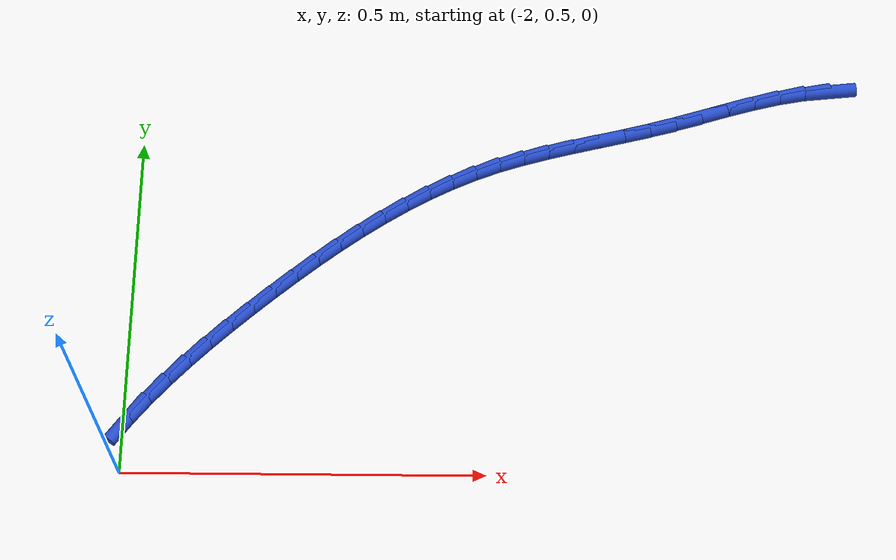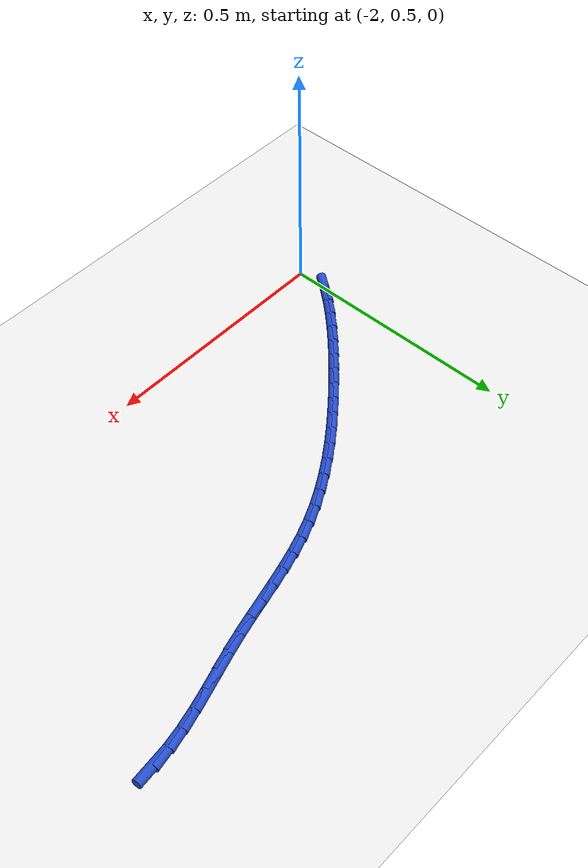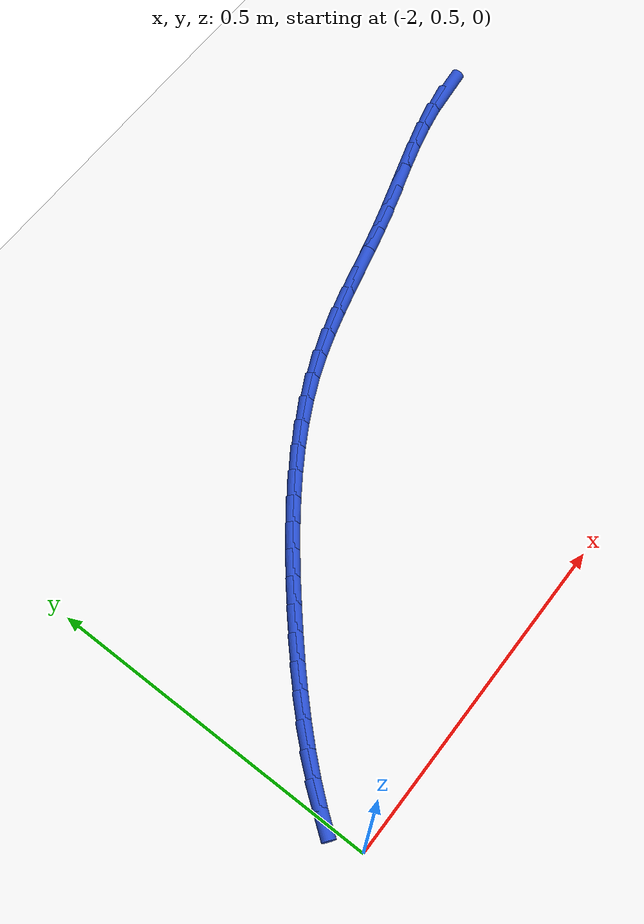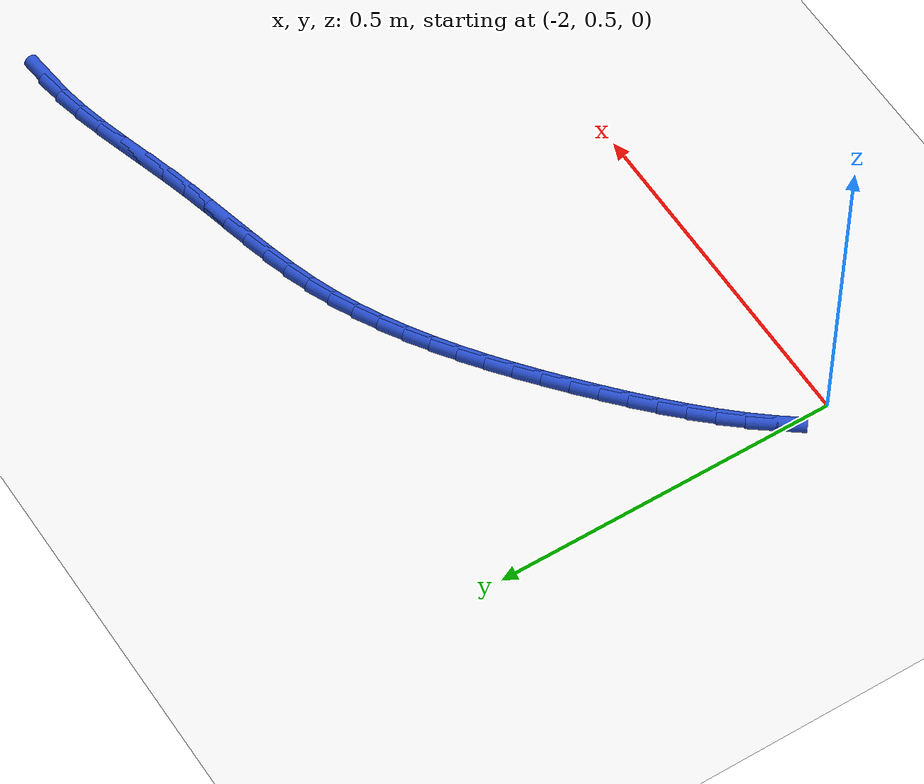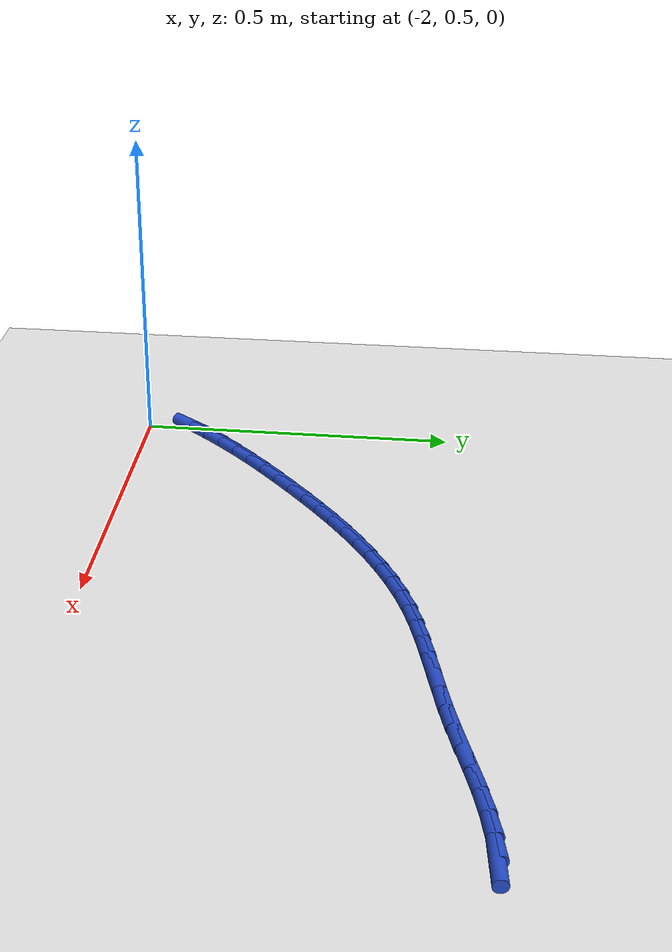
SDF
<sdf version="1.6">
 <world name="default">
  <model name="ground_plane">
   <static>1</static>
   <link name="link">
    <collision name="collision">
     <geometry><plane><normal>0 0 1</normal><size>100 100</size></plane></geometry>
     <surface><friction><ode><mu>100</mu><mu2>50</mu2></ode></friction></surface>
    </collision>
    <visual name="visual">
     <cast_shadows>0</cast_shadows>
     <geometry><plane><normal>0 0 1</normal><size>100 100</size></plane></geometry>
     <material>
      <script><uri>file://media/materials/scripts/gazebo.material</uri><name>Gazebo/WhiteGlow</name></script>
     </material>
    </visual>
   </link>
  </model>
  <model name="line">
   <link name="link_43">
    <pose>-1.0068866587633527 1.0908039915224352 0.01 0 1.57 0.10284120702126016</pose>
    <collision name="collision">
     <geometry><cylinder><radius>0.01</radius><length>0.08</length></cylinder></geometry>
    </collision>
    <visual name="visual">
     <material>
      <script><name>Gazebo/Blue</name><uri>file://media/materials/scripts/gazebo.material</uri></script>
     </material>
     <geometry><cylinder><radius>0.01</radius><length>0.08</length></cylinder></geometry>
    </visual>
   </link>
   <link name="link_44">
    <pose>-1.0431667422989725 1.0870596943366468 0.01 0 1.57 0.1869332416069128</pose>
    <collision name="collision">
     <geometry><cylinder><radius>0.01</radius><length>0.08</length></cylinder></geometry>
    </collision>
    <visual name="visual">
     <material>
      <script><name>Gazebo/Blue</name><uri>file://media/materials/scripts/gazebo.material</uri></script>
     </material>
     <geometry><cylinder><radius>0.01</radius><length>0.08</length></cylinder></geometry>
    </visual>
   </link>
   <link name="link_45">
    <pose>-1.0802336745102745 1.0800487986654752 0.01 0 1.57 0.24567239808402153</pose>
    <collision name="collision">
     <geometry><cylinder><radius>0.01</radius><length>0.08</length></cylinder></geometry>
    </collision>
    <visual name="visual">
     <material>
      <script><name>Gazebo/Blue</name><uri>file://media/materials/scripts/gazebo.material</uri></script>
     </material>
     <geometry><cylinder><radius>0.01</radius><length>0.08</length></cylinder></geometry>
    </visual>
   </link>
   <link name="link_46">
    <pose>-1.1178769156962396 1.0706102369671717 0.01 0 1.57 0.2823710493330009</pose>
    <collision name="collision">
     <geometry><cylinder><radius>0.01</radius><length>0.08</length></cylinder></geometry>
    </collision>
    <visual name="visual">
     <material>
      <script><name>Gazebo/Blue</name><uri>file://media/materials/scripts/gazebo.material</uri></script>
     </material>
     <geometry><cylinder><radius>0.01</radius><length>0.08</length></cylinder></geometry>
    </visual>
   </link>
   <link name="link_47">
    <pose>-1.1558859261558487 1.0595829416999898 0.01 0 1.57 0.29931862418804644</pose>
    <collision name="collision">
     <geometry><cylinder><radius>0.01</radius><length>0.08</length></cylinder></geometry>
    </collision>
    <visual name="visual">
     <material>
      <script><name>Gazebo/Blue</name><uri>file://media/materials/scripts/gazebo.material</uri></script>
     </material>
     <geometry><cylinder><radius>0.01</radius><length>0.08</length></cylinder></geometry>
    </visual>
   </link>
   <link name="link_48">
    <pose>-1.1940501661880838 1.0478058453221826 0.01 0 1.57 0.2975911426088817</pose>
    <collision name="collision">
     <geometry><cylinder><radius>0.01</radius><length>0.08</length></cylinder></geometry>
    </collision>
    <visual name="visual">
     <material>
      <script><name>Gazebo/Blue</name><uri>file://media/materials/scripts/gazebo.material</uri></script>
     </material>
     <geometry><cylinder><radius>0.01</radius><length>0.08</length></cylinder></geometry>
    </visual>
   </link>
   <link name="link_49">
    <pose>-1.232159096091926 1.0361178802920024 0.01 0 1.57 0.2776125273438024</pose>
    <collision name="collision">
     <geometry><cylinder><radius>0.01</radius><length>0.08</length></cylinder></geometry>
    </collision>
    <visual name="visual">
     <material>
      <script><name>Gazebo/Blue</name><uri>file://media/materials/scripts/gazebo.material</uri></script>
     </material>
     <geometry><cylinder><radius>0.01</radius><length>0.08</length></cylinder></geometry>
    </visual>
   </link>
   <link name="link_50">
    <pose>-1.2700052946151772 1.025332803401851 0.01 0 1.57 0.25323413614008616</pose>
    <collision name="collision">
     <geometry><cylinder><radius>0.01</radius><length>0.08</length></cylinder></geometry>
    </collision>
    <visual name="visual">
     <material>
      <script><name>Gazebo/Blue</name><uri>file://media/materials/scripts/gazebo.material</uri></script>
     </material>
     <geometry><cylinder><radius>0.01</radius><length>0.08</length></cylinder></geometry>
    </visual>
   </link>
   <link name="link_51">
    <pose>-1.3074586478881973 1.0156402583214854 0.01 0 1.57 0.2400868211530857</pose>
    <collision name="collision">
     <geometry><cylinder><radius>0.01</radius><length>0.08</length></cylinder></geometry>
    </collision>
    <visual name="visual">
     <material>
      <script><name>Gazebo/Blue</name><uri>file://media/materials/scripts/gazebo.material</uri></script>
     </material>
     <geometry><cylinder><radius>0.01</radius><length>0.08</length></cylinder></geometry>
    </visual>
   </link>
   <link name="link_52">
    <pose>-1.344469584534965 1.0065796581018849 0.01 0 1.57 0.23953303718060182</pose>
    <collision name="collision">
     <geometry><cylinder><radius>0.01</radius><length>0.08</length></cylinder></geometry>
    </collision>
    <visual name="visual">
     <material>
      <script><name>Gazebo/Blue</name><uri>file://media/materials/scripts/gazebo.material</uri></script>
     </material>
     <geometry><cylinder><radius>0.01</radius><length>0.08</length></cylinder></geometry>
    </visual>
   </link>
   <link name="link_53">
    <pose>-1.3809922989913888 0.9976600138768246 0.01 0 1.57 0.25209243304709616</pose>
    <collision name="collision">
     <geometry><cylinder><radius>0.01</radius><length>0.08</length></cylinder></geometry>
    </collision>
    <visual name="visual">
     <material>
      <script><name>Gazebo/Blue</name><uri>file://media/materials/scripts/gazebo.material</uri></script>
     </material>
     <geometry><cylinder><radius>0.01</radius><length>0.08</length></cylinder></geometry>
    </visual>
   </link>
   <link name="link_54">
    <pose>-1.416980985693379 0.988390336780079 0.01 0 1.57 0.27813995150906007</pose>
    <collision name="collision">
     <geometry><cylinder><radius>0.01</radius><length>0.08</length></cylinder></geometry>
    </collision>
    <visual name="visual">
     <material>
      <script><name>Gazebo/Blue</name><uri>file://media/materials/scripts/gazebo.material</uri></script>
     </material>
     <geometry><cylinder><radius>0.01</radius><length>0.08</length></cylinder></geometry>
    </visual>
   </link>
   <link name="link_55">
    <pose>-1.4523898390768453 0.9782796379454224 0.01 0 1.57 0.3178203825866348</pose>
    <collision name="collision">
     <geometry><cylinder><radius>0.01</radius><length>0.08</length></cylinder></geometry>
    </collision>
    <visual name="visual">
     <material>
      <script><name>Gazebo/Blue</name><uri>file://media/materials/scripts/gazebo.material</uri></script>
     </material>
     <geometry><cylinder><radius>0.01</radius><length>0.08</length></cylinder></geometry>
    </visual>
   </link>
   <link name="link_56">
    <pose>-1.4871730535776966 0.9668369285066293 0.01 0 1.57 0.3703688471670377</pose>
    <collision name="collision">
     <geometry><cylinder><radius>0.01</radius><length>0.08</length></cylinder></geometry>
    </collision>
    <visual name="visual">
     <material>
      <script><name>Gazebo/Blue</name><uri>file://media/materials/scripts/gazebo.material</uri></script>
     </material>
     <geometry><cylinder><radius>0.01</radius><length>0.08</length></cylinder></geometry>
    </visual>
   </link>
   <link name="link_57">
    <pose>-1.5212873865819019 0.953590757447348 0.01 0 1.57 0.4261487031263551</pose>
    <collision name="collision">
     <geometry><cylinder><radius>0.01</radius><length>0.08</length></cylinder></geometry>
    </collision>
    <visual name="visual">
     <material>
      <script><name>Gazebo/Blue</name><uri>file://media/materials/scripts/gazebo.material</uri></script>
     </material>
     <geometry><cylinder><radius>0.01</radius><length>0.08</length></cylinder></geometry>
    </visual>
   </link>
   <link name="link_58">
    <pose>-1.5547338628133085 0.9384071319856674 0.01 0 1.57 0.4772437791033624</pose>
    <collision name="collision">
     <geometry><cylinder><radius>0.01</radius><length>0.08</length></cylinder></geometry>
    </collision>
    <visual name="visual">
     <material>
      <script><name>Gazebo/Blue</name><uri>file://media/materials/scripts/gazebo.material</uri></script>
     </material>
     <geometry><cylinder><radius>0.01</radius><length>0.08</length></cylinder></geometry>
    </visual>
   </link>
   <link name="link_59">
    <pose>-1.5875508895979857 0.9214370339405707 0.01 0 1.57 0.5233726154518015</pose>
    <collision name="collision">
     <geometry><cylinder><radius>0.01</radius><length>0.08</length></cylinder></geometry>
    </collision>
    <visual name="visual">
     <material>
      <script><name>Gazebo/Blue</name><uri>file://media/materials/scripts/gazebo.material</uri></script>
     </material>
     <geometry><cylinder><radius>0.01</radius><length>0.08</length></cylinder></geometry>
    </visual>
   </link>
   <link name="link_60">
    <pose>-1.6197780479189703 0.9028403921386134 0.01 0 1.57 0.564597298871546</pose>
    <collision name="collision">
     <geometry><cylinder><radius>0.01</radius><length>0.08</length></cylinder></geometry>
    </collision>
    <visual name="visual">
     <material>
      <script><name>Gazebo/Blue</name><uri>file://media/materials/scripts/gazebo.material</uri></script>
     </material>
     <geometry><cylinder><radius>0.01</radius><length>0.08</length></cylinder></geometry>
    </visual>
   </link>
   <link name="link_61">
    <pose>-1.6514549187592953 0.88277713540635 0.01 0 1.57 0.6010488464074891</pose>
    <collision name="collision">
     <geometry><cylinder><radius>0.01</radius><length>0.08</length></cylinder></geometry>
    </collision>
    <visual name="visual">
     <material>
      <script><name>Gazebo/Blue</name><uri>file://media/materials/scripts/gazebo.material</uri></script>
     </material>
     <geometry><cylinder><radius>0.01</radius><length>0.08</length></cylinder></geometry>
    </visual>
   </link>
   <link name="link_62">
    <pose>-1.6826210831019974 0.8614071925703365 0.01 0 1.57 0.6328972225329598</pose>
    <collision name="collision">
     <geometry><cylinder><radius>0.01</radius><length>0.08</length></cylinder></geometry>
    </collision>
    <visual name="visual">
     <material>
      <script><name>Gazebo/Blue</name><uri>file://media/materials/scripts/gazebo.material</uri></script>
     </material>
     <geometry><cylinder><radius>0.01</radius><length>0.08</length></cylinder></geometry>
    </visual>
   </link>
   <link name="link_63">
    <pose>-1.7133161219301112 0.8388904924571268 0.01 0 1.57 0.6603274313719758</pose>
    <collision name="collision">
     <geometry><cylinder><radius>0.01</radius><length>0.08</length></cylinder></geometry>
    </collision>
    <visual name="visual">
     <material>
      <script><name>Gazebo/Blue</name><uri>file://media/materials/scripts/gazebo.material</uri></script>
     </material>
     <geometry><cylinder><radius>0.01</radius><length>0.08</length></cylinder></geometry>
    </visual>
   </link>
   <link name="link_64">
    <pose>-1.743579616226671 0.8153869638932765 0.01 0 1.57 0.6835214183278648</pose>
    <collision name="collision">
     <geometry><cylinder><radius>0.01</radius><length>0.08</length></cylinder></geometry>
    </collision>
    <visual name="visual">
     <material>
      <script><name>Gazebo/Blue</name><uri>file://media/materials/scripts/gazebo.material</uri></script>
     </material>
     <geometry><cylinder><radius>0.01</radius><length>0.08</length></cylinder></geometry>
    </visual>
   </link>
   <link name="link_65">
    <pose>-1.7734511469747116 0.7910565357053404 0.01 0 1.57 0.7026448909877253</pose>
    <collision name="collision">
     <geometry><cylinder><radius>0.01</radius><length>0.08</length></cylinder></geometry>
    </collision>
    <visual name="visual">
     <material>
      <script><name>Gazebo/Blue</name><uri>file://media/materials/scripts/gazebo.material</uri></script>
     </material>
     <geometry><cylinder><radius>0.01</radius><length>0.08</length></cylinder></geometry>
    </visual>
   </link>
   <link name="link_66">
    <pose>-1.8029702951572697 0.7660591367198734 0.01 0 1.57 0.7181065279051181</pose>
    <collision name="collision">
     <geometry><cylinder><radius>0.01</radius><length>0.08</length></cylinder></geometry>
    </collision>
    <visual name="visual">
     <material>
      <script><name>Gazebo/Blue</name><uri>file://media/materials/scripts/gazebo.material</uri></script>
     </material>
     <geometry><cylinder><radius>0.01</radius><length>0.08</length></cylinder></geometry>
    </visual>
   </link>
   <link name="link_67">
    <pose>-1.8321691155087407 0.740547443304567 0.01 0 1.57 0.7343392273941438</pose>
    <collision name="collision">
     <geometry><cylinder><radius>0.01</radius><length>0.08</length></cylinder></geometry>
    </collision>
    <visual name="visual">
     <material>
      <script><name>Gazebo/Blue</name><uri>file://media/materials/scripts/gazebo.material</uri></script>
     </material>
     <geometry><cylinder><radius>0.01</radius><length>0.08</length></cylinder></geometry>
    </visual>
   </link>
   <link name="link_68">
    <pose>-1.860958548785866 0.7145574237321499 0.01 0 1.57 0.7549505215040747</pose>
    <collision name="collision">
     <geometry><cylinder><radius>0.01</radius><length>0.08</length></cylinder></geometry>
    </collision>
    <visual name="visual">
     <material>
      <script><name>Gazebo/Blue</name><uri>file://media/materials/scripts/gazebo.material</uri></script>
     </material>
     <geometry><cylinder><radius>0.01</radius><length>0.08</length></cylinder></geometry>
    </visual>
   </link>
   <link name="link_69">
    <pose>-1.889151754523706 0.688030822137671 0.01 0 1.57 0.7802046107404642</pose>
    <collision name="collision">
     <geometry><cylinder><radius>0.01</radius><length>0.08</length></cylinder></geometry>
    </collision>
    <visual name="visual">
     <material>
      <script><name>Gazebo/Blue</name><uri>file://media/materials/scripts/gazebo.material</uri></script>
     </material>
     <geometry><cylinder><radius>0.01</radius><length>0.08</length></cylinder></geometry>
    </visual>
   </link>
   <link name="link_70">
    <pose>-1.9165590996548878 0.6609066916430014 0.01 0 1.57 0.8103080394496367</pose>
    <collision name="collision">
     <geometry><cylinder><radius>0.01</radius><length>0.08</length></cylinder></geometry>
    </collision>
    <visual name="visual">
     <material>
      <script><name>Gazebo/Blue</name><uri>file://media/materials/scripts/gazebo.material</uri></script>
     </material>
     <geometry><cylinder><radius>0.01</radius><length>0.08</length></cylinder></geometry>
    </visual>
   </link>
   <link name="link_71">
    <pose>-1.9429909511120382 0.633124085370011 0.01 0 1.57 0.8454964168579682</pose>
    <collision name="collision">
     <geometry><cylinder><radius>0.01</radius><length>0.08</length></cylinder></geometry>
    </collision>
    <visual name="visual">
     <material>
      <script><name>Gazebo/Blue</name><uri>file://media/materials/scripts/gazebo.material</uri></script>
     </material>
     <geometry><cylinder><radius>0.01</radius><length>0.08</length></cylinder></geometry>
    </visual>
   </link>
   <link name="link_72">
    <pose>-1.9682576758277839 0.6046220564405713 0.01 0 1.57 0.8860159294098721</pose>
    <collision name="collision">
     <geometry><cylinder><radius>0.01</radius><length>0.08</length></cylinder></geometry>
    </collision>
    <visual name="visual">
     <material>
      <script><name>Gazebo/Blue</name><uri>file://media/materials/scripts/gazebo.material</uri></script>
     </material>
     <geometry><cylinder><radius>0.01</radius><length>0.08</length></cylinder></geometry>
    </visual>
   </link>
   <link name="link_73">
    <pose>-1.9921696407347507 0.5753396579765522 0.01 0 1.57 0.9320972501152541</pose>
    <collision name="collision">
     <geometry><cylinder><radius>0.01</radius><length>0.08</length></cylinder></geometry>
    </collision>
    <visual name="visual">
     <material>
      <script><name>Gazebo/Blue</name><uri>file://media/materials/scripts/gazebo.material</uri></script>
     </material>
     <geometry><cylinder><radius>0.01</radius><length>0.08</length></cylinder></geometry>
    </visual>
   </link>
  </model>
 </world>
</sdf>
